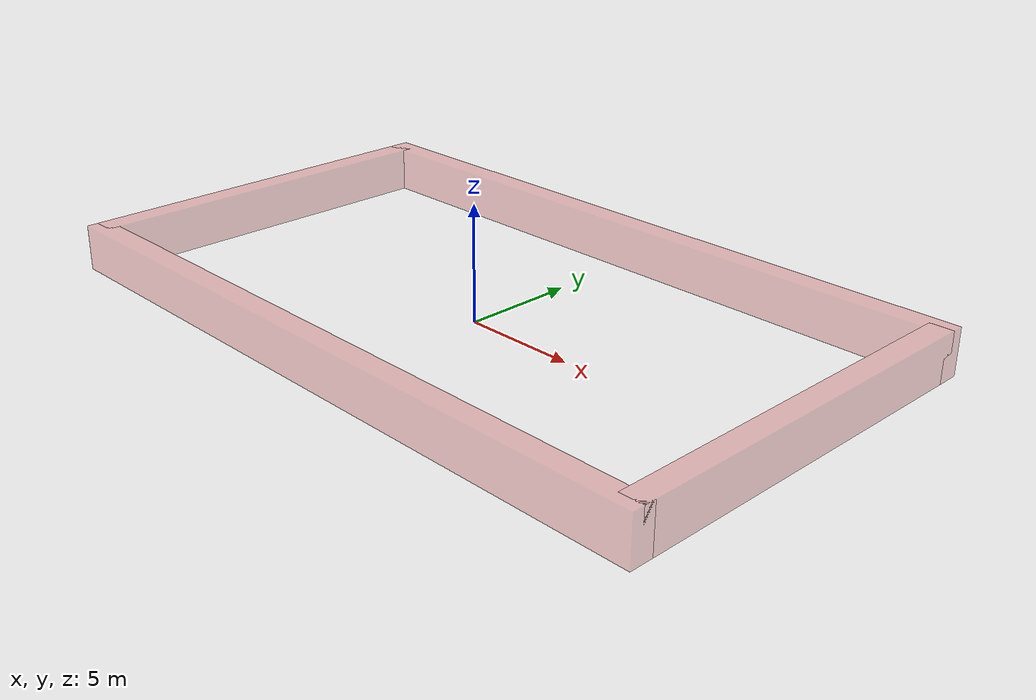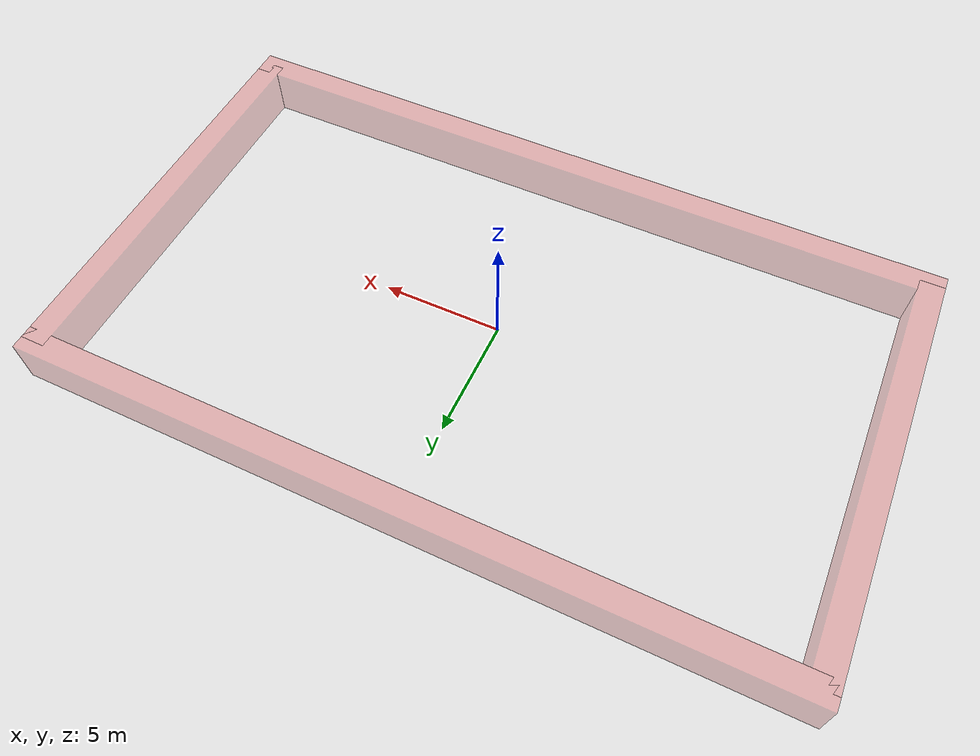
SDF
<sdf version="1.7">
 <world name="default">
  <plugin filename="libignition-gazebo-physics-system.so" name="ignition::gazebo::systems::Physics"/>
  <plugin filename="libignition-gazebo-scene-broadcaster-system.so" name="ignition::gazebo::systems::SceneBroadcaster"/>
  <plugin filename="libignition-gazebo-user-commands-system.so" name="ignition::gazebo::systems::UserCommands"/>
  <plugin filename="libignition-gazebo-sensors-system.so" name="ignition::gazebo::systems::Sensors">
   <render_engine>ogre2</render_engine>
  </plugin>
  <plugin filename="libignition-gazebo-imu-system.so" name="ignition::gazebo::systems::Imu"/>
  <light type="directional" name="direct_light">
   <visualize>false</visualize>
   <pose>14.6 7.9 10 0 0 0</pose>
   <diffuse>1.0 1.0 1.0 1</diffuse>
   <specular>0.5 0.5 0.5 1</specular>
   <attenuation>
    <range>1000</range>
    <constant>0.9</constant>
    <linear>0.01</linear>
    <quadratic>0.001</quadratic>
   </attenuation>
   <direction>0 0 -1</direction>
  </light>
  <model name="boundary_wall_east">
   <static>true</static>
   <pose>15.1 0.6 1.0 0 0 0</pose>
   <link name="link">
    <collision name="collision">
     <geometry><box><size>1.0 17.0 2.0</size></box></geometry>
     <surface>
      <friction><ode><mu>1.0</mu><mu2>1.0</mu2></ode></friction>
      <contact><ode><kp>1e8</kp><kd>1.0</kd></ode></contact>
     </surface>
    </collision>
    <visual name="visual">
     <geometry><box><size>1.0 17.0 2.0</size></box></geometry>
     <material><ambient>0.8 0.2 0.2 0.3</ambient><diffuse>0.8 0.2 0.2 0.3</diffuse></material>
     <transparency>0.7</transparency>
    </visual>
   </link>
  </model>
  <model name="boundary_wall_west">
   <static>true</static>
   <pose>-15.1 0.6 1.0 0 0 0</pose>
   <link name="link">
    <collision name="collision">
     <geometry><box><size>1.0 17.0 2.0</size></box></geometry>
     <surface>
      <friction><ode><mu>1.0</mu><mu2>1.0</mu2></ode></friction>
      <contact><ode><kp>1e8</kp><kd>1.0</kd></ode></contact>
     </surface>
    </collision>
    <visual name="visual">
     <geometry><box><size>1.0 17.0 2.0</size></box></geometry>
     <material><ambient>0.8 0.2 0.2 0.3</ambient><diffuse>0.8 0.2 0.2 0.3</diffuse></material>
     <transparency>0.7</transparency>
    </visual>
   </link>
  </model>
  <model name="boundary_wall_north">
   <static>true</static>
   <pose>0.0 9.1 1.0 0 0 0</pose>
   <link name="link">
    <collision name="collision">
     <geometry><box><size>31.2 1.0 2.0</size></box></geometry>
     <surface>
      <friction><ode><mu>1.0</mu><mu2>1.0</mu2></ode></friction>
      <contact><ode><kp>1e8</kp><kd>1.0</kd></ode></contact>
     </surface>
    </collision>
    <visual name="visual">
     <geometry><box><size>31.2 1.0 2.0</size></box></geometry>
     <material><ambient>0.8 0.2 0.2 0.3</ambient><diffuse>0.8 0.2 0.2 0.3</diffuse></material>
     <transparency>0.7</transparency>
    </visual>
   </link>
  </model>
  <model name="boundary_wall_south">
   <static>true</static>
   <pose>0.0 -7.9 1.0 0 0 0</pose>
   <link name="link">
    <collision name="collision">
     <geometry><box><size>31.2 1.0 2.0</size></box></geometry>
     <surface>
      <friction><ode><mu>1.0</mu><mu2>1.0</mu2></ode></friction>
      <contact><ode><kp>1e8</kp><kd>1.0</kd></ode></contact>
     </surface>
    </collision>
    <visual name="visual">
     <geometry><box><size>31.2 1.0 2.0</size></box></geometry>
     <material><ambient>0.8 0.2 0.2 0.3</ambient><diffuse>0.8 0.2 0.2 0.3</diffuse></material>
     <transparency>0.7</transparency>
    </visual>
   </link>
  </model>
 </world>
</sdf>
